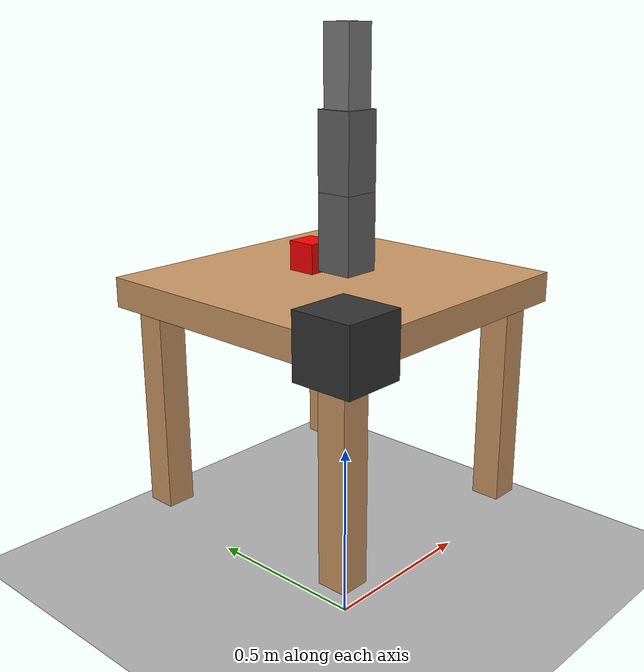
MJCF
<?xml version="1.0" ?>
<mujoco model="lab_scene">
  <compiler angle="radian" meshdir="meshes"/>

  <default>
    <joint armature="0.1" damping="0.1" limited="true"/>
    <geom friction="1 0.1 0.1" margin="0.001"/>
  </default>

  <option timestep="0.002"/>

  <worldbody>
    <!-- Floor -->
    <geom conaffinity="1" contype="1" name="floor" pos="0 0 0" size="1 1 0.1" type="plane" rgba="0.7 0.7 0.7 1"/>

    <!-- Table -->
    <body name="table" pos="0.5 0.5 0">
      <geom pos="0 0 0.75" size="0.5 0.5 0.05" type="box" rgba="0.8 0.6 0.4 1"/>
      <geom pos="-0.4 -0.4 0.375" size="0.05 0.05 0.375" type="box" rgba="0.8 0.6 0.4 1"/>
      <geom pos="0.4 -0.4 0.375" size="0.05 0.05 0.375" type="box" rgba="0.8 0.6 0.4 1"/>
      <geom pos="-0.4 0.4 0.375" size="0.05 0.05 0.375" type="box" rgba="0.8 0.6 0.4 1"/>
      <geom pos="0.4 0.4 0.375" size="0.05 0.05 0.375" type="box" rgba="0.8 0.6 0.4 1"/>
    </body>

    <!-- Robotic Arm -->
    <body name="arm_base" pos="0 0 0.8">
      <inertial mass="5" pos="0 0 0" fullinertia="5 5 5 0 0 0"/>
      <geom pos="0 0 0" size="0.1 0.1 0.1" type="box" rgba="0.2 0.2 0.2 1"/>

      <!-- Link 1 -->
      <joint name="shoulder_pan" axis="0 0 1" pos="0 0 0" range="-3.14159 3.14159" type="hinge"/>
      <body name="link1" pos="0 0 0.2">
        <inertial mass="2" pos="0 0 0.1" fullinertia="0.2 0.2 0.2 0 0 0"/>
        <geom pos="0 0 0.1" size="0.05 0.05 0.1" type="box" rgba="0.4 0.4 0.4 1"/>

        <!-- Link 2 -->
        <joint name="shoulder_lift" axis="0 1 0" pos="0 0 0" range="-1.5708 1.5708" type="hinge"/>
        <body name="link2" pos="0 0 0.2">
          <inertial mass="2" pos="0 0 0.1" fullinertia="0.2 0.2 0.2 0 0 0"/>
          <geom pos="0 0 0.1" size="0.05 0.05 0.1" type="box" rgba="0.4 0.4 0.4 1"/>

          <!-- Link 3 -->
          <joint name="elbow" axis="0 1 0" pos="0 0 0" range="-1.5708 1.5708" type="hinge"/>
          <body name="link3" pos="0 0 0.2">
            <inertial mass="1.5" pos="0 0 0.1" fullinertia="0.15 0.15 0.15 0 0 0"/>
            <geom pos="0 0 0.1" size="0.04 0.04 0.1" type="box" rgba="0.5 0.5 0.5 1"/>

            <!-- Wrist -->
            <joint name="wrist" axis="0 1 0" pos="0 0 0" range="-1.5708 1.5708" type="hinge"/>
            <body name="end_effector" pos="0 0 0.15">
              <inertial mass="0.5" pos="0 0 0" fullinertia="0.01 0.01 0.01 0 0 0"/>
              <geom pos="0 0 0" size="0.03 0.03 0.05" type="box" rgba="0.2 0.8 0.2 1"/>
            </body>
          </body>
        </body>
      </body>
    </body>

    <!-- Object on table -->
    <body name="object1" pos="0.5 0.6 0.85">
      <inertial mass="0.2" pos="0 0 0" fullinertia="0.001 0.001 0.001 0 0 0"/>
      <geom pos="0 0 0" size="0.05 0.05 0.05" type="box" rgba="1 0 0 1"/>
      <joint name="obj1_x" axis="1 0 0" pos="0 0 0" type="slide" range="-1 1"/>
      <joint name="obj1_y" axis="0 1 0" pos="0 0 0" type="slide" range="-1 1"/>
      <joint name="obj1_z" axis="0 0 1" pos="0 0 0" type="slide" range="0 1"/>
    </body>
  </worldbody>

  <actuator>
    <motor ctrllimited="true" ctrlrange="-1 1" joint="shoulder_pan" name="shoulder_pan_motor"/>
    <motor ctrllimited="true" ctrlrange="-1 1" joint="shoulder_lift" name="shoulder_lift_motor"/>
    <motor ctrllimited="true" ctrlrange="-1 1" joint="elbow" name="elbow_motor"/>
    <motor ctrllimited="true" ctrlrange="-1 1" joint="wrist" name="wrist_motor"/>
  </actuator>
</mujoco>
